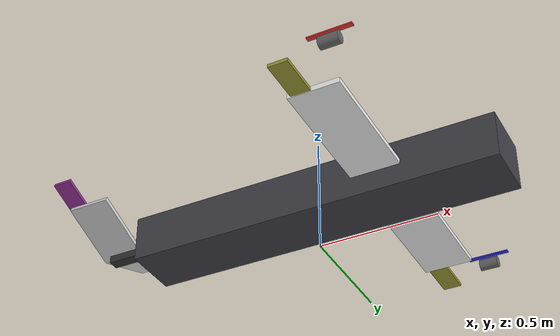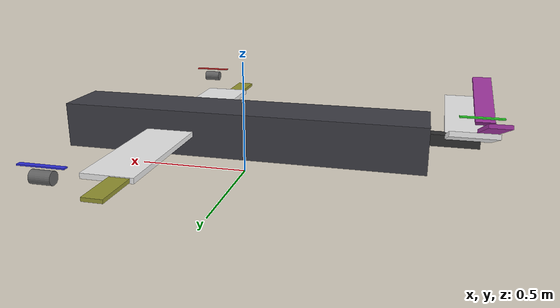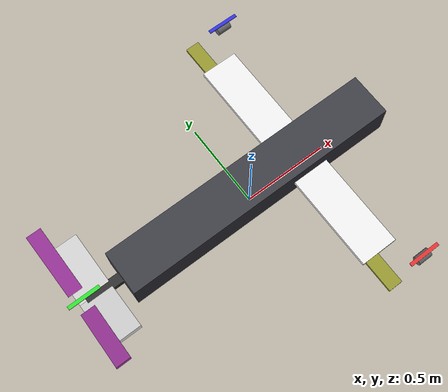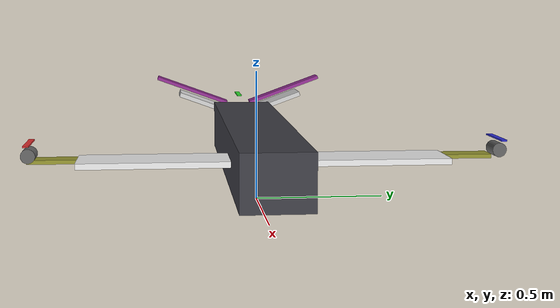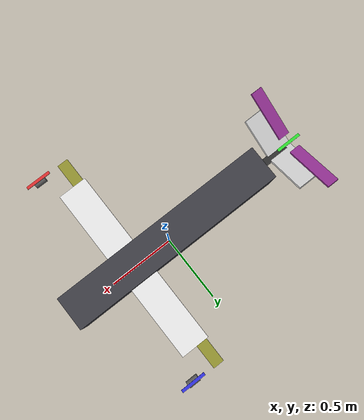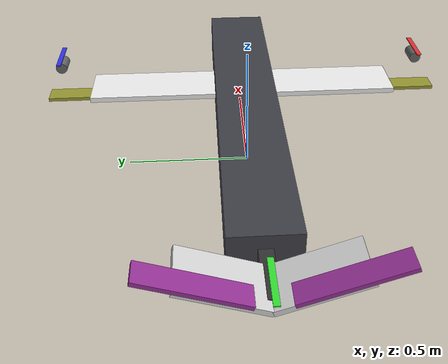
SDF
<?xml version="1.0"?>
<sdf version="1.9">
  <model name="stallion_vtol">
    <pose>0 0 0.2 0 0 0</pose>

    <link name="base_link">
      <inertial>
        <mass>2.65</mass>
        <inertia>
          <ixx>0.4705</ixx><iyy>0.2159</iyy><izz>0.6731</izz>
          <ixy>0</ixy><ixz>0</ixz><iyz>0</iyz>
        </inertia>
      </inertial>
      <collision name="fuselage_col">
        <geometry><box><size>1.6 0.25 0.20</size></box></geometry>
      </collision>
      <visual name="fuselage_vis">
        <geometry><box><size>1.6 0.25 0.20</size></box></geometry>
        <material><ambient>0.15 0.15 0.18 1</ambient><diffuse>0.25 0.25 0.28 1</diffuse></material>
      </visual>
      <!-- Wing: Stallion V2 (chord 0.211 m, span 1.34 m, area 0.265 m²) -->
      <visual name="wing_vis">
        <pose>0.30 0 0.00 0 0 0</pose>
        <geometry><box><size>0.211 1.34 0.022</size></box></geometry>
        <material><ambient>0.9 0.9 0.9 1</ambient><diffuse>0.95 0.95 0.95 1</diffuse></material>
      </visual>
      <collision name="wing_col">
        <pose>0.30 0 0 0 0 0</pose>
        <geometry><box><size>0.211 1.34 0.022</size></box></geometry>
      </collision>
      <!-- Tail boom -->
      <visual name="tailboom_vis">
        <pose>-0.60 0 0.02 0 0 0</pose>
        <geometry><box><size>0.80 0.05 0.05</size></box></geometry>
        <material><ambient>0.2 0.2 0.2 1</ambient></material>
      </visual>
      <!-- V-tail static fins (angled +/-35 deg about X) -->
      <visual name="vtail_L_static_vis">
        <pose>-0.95 0.14 0.08 0.3491 0 0</pose>
        <geometry><box><size>0.18 0.30 0.02</size></box></geometry>
        <material><ambient>0.85 0.85 0.85 1</ambient></material>
      </visual>
      <visual name="vtail_R_static_vis">
        <pose>-0.95 -0.14 0.08 -0.3491 0 0</pose>
        <geometry><box><size>0.18 0.30 0.02</size></box></geometry>
        <material><ambient>0.85 0.85 0.85 1</ambient></material>
      </visual>

      <!-- Air pressure (altimeter) -->
      <sensor name="air_pressure_sensor" type="air_pressure">
        <gz_frame_id>base_link</gz_frame_id>
        <always_on>1</always_on>
        <update_rate>50</update_rate>
        <air_pressure>
          <pressure>
            <noise type="gaussian"><mean>0</mean><stddev>3</stddev></noise>
          </pressure>
        </air_pressure>
      </sensor>
      <!-- Magnetometer -->
      <sensor name="magnetometer_sensor" type="magnetometer">
        <gz_frame_id>base_link</gz_frame_id>
        <always_on>1</always_on>
        <update_rate>100</update_rate>
        <magnetometer>
          <x><noise type="gaussian"><stddev>0.0001</stddev></noise></x>
          <y><noise type="gaussian"><stddev>0.0001</stddev></noise></y>
          <z><noise type="gaussian"><stddev>0.0001</stddev></noise></z>
        </magnetometer>
      </sensor>
      <!-- IMU -->
      <sensor name="imu_sensor" type="imu">
        <gz_frame_id>base_link</gz_frame_id>
        <always_on>1</always_on>
        <update_rate>250</update_rate>
        <imu>
          <angular_velocity>
            <x><noise type="gaussian"><mean>0.0</mean><stddev>0.0008726646</stddev></noise></x>
            <y><noise type="gaussian"><mean>0.0</mean><stddev>0.0008726646</stddev></noise></y>
            <z><noise type="gaussian"><mean>0.0</mean><stddev>0.0008726646</stddev></noise></z>
          </angular_velocity>
          <linear_acceleration>
            <x><noise type="gaussian"><mean>0.0</mean><stddev>0.00637</stddev></noise></x>
            <y><noise type="gaussian"><mean>0.0</mean><stddev>0.00637</stddev></noise></y>
            <z><noise type="gaussian"><mean>0.0</mean><stddev>0.00686</stddev></noise></z>
          </linear_acceleration>
        </imu>
      </sensor>
      <!-- GNSS -->
      <sensor name="navsat_sensor" type="navsat">
        <gz_frame_id>base_link</gz_frame_id>
        <always_on>1</always_on>
        <update_rate>30</update_rate>
      </sensor>
    </link>

    <link name="airspeed_link">
      <pose>0.40 0 0.05 0 0 0</pose>
      <inertial>
        <mass>0.001</mass>
        <inertia><ixx>1e-7</ixx><iyy>1e-7</iyy><izz>1e-7</izz>
                 <ixy>0</ixy><ixz>0</ixz><iyz>0</iyz></inertia>
      </inertial>
      <sensor name="air_speed" type="air_speed">
        <always_on>1</always_on>
        <update_rate>20</update_rate>
        <air_speed>
          <pressure>
            <noise type="gaussian"><mean>0</mean><stddev>0.01</stddev></noise>
          </pressure>
        </air_speed>
      </sensor>
    </link>
    <joint name="airspeed_joint" type="fixed">
      <parent>base_link</parent>
      <child>airspeed_link</child>
    </joint>

    <!-- ==================== Front RIGHT rotor 0 (CW, PX4 +PY → gz -Y) ==================== -->
    <link name="tilt_arm_R">
      <pose>0.44 -0.82 0.05 0 0 0</pose>
      <inertial>
        <mass>0.04</mass>
        <inertia><ixx>3e-5</ixx><iyy>3e-5</iyy><izz>3e-5</izz>
                 <ixy>0</ixy><ixz>0</ixz><iyz>0</iyz></inertia>
      </inertial>
      <visual name="tilt_arm_R_vis">
        <geometry><cylinder><radius>0.025</radius><length>0.08</length></cylinder></geometry>
        <pose>0 0 0 0 1.5708 0</pose>
        <material><ambient>0.4 0.4 0.4 1</ambient></material>
      </visual>
    </link>
    <joint name="tilt_joint_R" type="revolute">
      <parent>base_link</parent>
      <child>tilt_arm_R</child>
      <axis>
        <xyz>0 1 0</xyz>
        <limit><lower>0</lower><upper>1.5708</upper>
               <effort>10</effort><velocity>3</velocity></limit>
        <dynamics><damping>0.05</damping></dynamics>
      </axis>
    </joint>
    <link name="rotor_0">
      <pose>0.44 -0.82 0.09 0 0 0</pose>
      <inertial>
        <!-- T-Motor F90 28065 1300KV (~80g) + HQProp 7x4x3 tri-blade (~5g) -->
        <mass>0.085</mass>
        <inertia><ixx>3.5e-5</ixx><iyy>3.5e-5</iyy><izz>3.0e-5</izz>
                 <ixy>0</ixy><ixz>0</ixz><iyz>0</iyz></inertia>
      </inertial>
      <visual name="rotor_0_vis">
        <geometry><box><size>0.178 0.020 0.005</size></box></geometry>
        <material><ambient>0.9 0.2 0.2 1</ambient></material>
      </visual>
    </link>
    <joint name="rotor_0_joint" type="revolute">
      <parent>tilt_arm_R</parent>
      <child>rotor_0</child>
      <axis>
        <xyz>0 0 1</xyz>
        <limit><lower>-1e16</lower><upper>1e16</upper></limit>
        <dynamics><damping>0.002</damping></dynamics>
      </axis>
    </joint>

    <!-- ==================== Front LEFT rotor 1 (CCW, PX4 -PY → gz +Y) ==================== -->
    <link name="tilt_arm_L">
      <pose>0.44 0.82 0.05 0 0 0</pose>
      <inertial>
        <mass>0.04</mass>
        <inertia><ixx>3e-5</ixx><iyy>3e-5</iyy><izz>3e-5</izz>
                 <ixy>0</ixy><ixz>0</ixz><iyz>0</iyz></inertia>
      </inertial>
      <visual name="tilt_arm_L_vis">
        <geometry><cylinder><radius>0.025</radius><length>0.08</length></cylinder></geometry>
        <pose>0 0 0 0 1.5708 0</pose>
        <material><ambient>0.4 0.4 0.4 1</ambient></material>
      </visual>
    </link>
    <joint name="tilt_joint_L" type="revolute">
      <parent>base_link</parent>
      <child>tilt_arm_L</child>
      <axis>
        <xyz>0 1 0</xyz>
        <limit><lower>0</lower><upper>1.5708</upper>
               <effort>10</effort><velocity>3</velocity></limit>
        <dynamics><damping>0.05</damping></dynamics>
      </axis>
    </joint>
    <link name="rotor_1">
      <pose>0.44 0.82 0.09 0 0 0</pose>
      <inertial>
        <mass>0.085</mass>
        <inertia><ixx>3.5e-5</ixx><iyy>3.5e-5</iyy><izz>3.0e-5</izz>
                 <ixy>0</ixy><ixz>0</ixz><iyz>0</iyz></inertia>
      </inertial>
      <visual name="rotor_1_vis">
        <geometry><box><size>0.178 0.020 0.005</size></box></geometry>
        <material><ambient>0.2 0.2 0.9 1</ambient></material>
      </visual>
    </link>
    <joint name="rotor_1_joint" type="revolute">
      <parent>tilt_arm_L</parent>
      <child>rotor_1</child>
      <axis>
        <xyz>0 0 1</xyz>
        <limit><lower>-1e16</lower><upper>1e16</upper></limit>
        <dynamics><damping>0.002</damping></dynamics>
      </axis>
    </joint>

    <!-- ==================== Tail rotor 2 (CCW, fixed vertical) ==================== -->
    <link name="rotor_2">
      <pose>-1.00 0 0.12 0 0 0</pose>
      <inertial>
        <mass>0.085</mass>
        <inertia><ixx>3.5e-5</ixx><iyy>3.5e-5</iyy><izz>3.0e-5</izz>
                 <ixy>0</ixy><ixz>0</ixz><iyz>0</iyz></inertia>
      </inertial>
      <visual name="rotor_2_vis">
        <geometry><box><size>0.178 0.020 0.005</size></box></geometry>
        <material><ambient>0.2 0.9 0.2 1</ambient></material>
      </visual>
    </link>
    <joint name="rotor_2_joint" type="revolute">
      <parent>base_link</parent>
      <child>rotor_2</child>
      <axis>
        <xyz>0 0 1</xyz>
        <limit><lower>-1e16</lower><upper>1e16</upper></limit>
        <dynamics><damping>0.002</damping></dynamics>
      </axis>
    </joint>

    <!-- ==================== Aileron L (left wing, SDF +Y) ==================== -->
    <link name="aileron_L">
      <pose>0.25 0.65 0.00 0 0 0</pose>
      <inertial>
        <mass>0.025</mass>
        <inertia><ixx>5e-5</ixx><iyy>5e-5</iyy><izz>5e-5</izz>
                 <ixy>0</ixy><ixz>0</ixz><iyz>0</iyz></inertia>
      </inertial>
      <visual name="aileron_L_vis">
        <geometry><box><size>0.08 0.40 0.015</size></box></geometry>
        <material><ambient>0.6 0.6 0.2 1</ambient></material>
      </visual>
    </link>
    <joint name="aileron_L_joint" type="revolute">
      <parent>base_link</parent>
      <child>aileron_L</child>
      <axis>
        <xyz>0 1 0</xyz>
        <limit><lower>-0.5236</lower><upper>0.5236</upper>
               <effort>5</effort><velocity>5</velocity></limit>
        <dynamics><damping>0.02</damping></dynamics>
      </axis>
    </joint>

    <!-- ==================== Aileron R (right wing, SDF -Y) ==================== -->
    <link name="aileron_R">
      <pose>0.25 -0.65 0.00 0 0 0</pose>
      <inertial>
        <mass>0.025</mass>
        <inertia><ixx>5e-5</ixx><iyy>5e-5</iyy><izz>5e-5</izz>
                 <ixy>0</ixy><ixz>0</ixz><iyz>0</iyz></inertia>
      </inertial>
      <visual name="aileron_R_vis">
        <geometry><box><size>0.08 0.40 0.015</size></box></geometry>
        <material><ambient>0.6 0.6 0.2 1</ambient></material>
      </visual>
    </link>
    <joint name="aileron_R_joint" type="revolute">
      <parent>base_link</parent>
      <child>aileron_R</child>
      <axis>
        <xyz>0 1 0</xyz>
        <limit><lower>-0.5236</lower><upper>0.5236</upper>
               <effort>5</effort><velocity>5</velocity></limit>
        <dynamics><damping>0.02</damping></dynamics>
      </axis>
    </joint>

    <!-- ==================== V-tail L ruddervator (left, SDF +Y, roll +35°) ==================== -->
    <link name="vtail_L">
      <pose>-1.02 0.22 0.14 0.3491 0 0</pose>
      <inertial>
        <mass>0.03</mass>
        <inertia><ixx>5e-5</ixx><iyy>5e-5</iyy><izz>5e-5</izz>
                 <ixy>0</ixy><ixz>0</ixz><iyz>0</iyz></inertia>
      </inertial>
      <visual name="vtail_L_vis">
        <geometry><box><size>0.08 0.35 0.015</size></box></geometry>
        <material><ambient>0.6 0.2 0.6 1</ambient></material>
      </visual>
    </link>
    <joint name="vtail_L_joint" type="revolute">
      <parent>base_link</parent>
      <child>vtail_L</child>
      <axis>
        <xyz>0 1 0</xyz>
        <limit><lower>-0.5236</lower><upper>0.5236</upper>
               <effort>5</effort><velocity>5</velocity></limit>
        <dynamics><damping>0.02</damping></dynamics>
      </axis>
    </joint>

    <!-- ==================== V-tail R ruddervator (right, SDF -Y, roll -35°) ==================== -->
    <link name="vtail_R">
      <pose>-1.02 -0.22 0.14 -0.3491 0 0</pose>
      <inertial>
        <mass>0.03</mass>
        <inertia><ixx>5e-5</ixx><iyy>5e-5</iyy><izz>5e-5</izz>
                 <ixy>0</ixy><ixz>0</ixz><iyz>0</iyz></inertia>
      </inertial>
      <visual name="vtail_R_vis">
        <geometry><box><size>0.08 0.35 0.015</size></box></geometry>
        <material><ambient>0.6 0.2 0.6 1</ambient></material>
      </visual>
    </link>
    <joint name="vtail_R_joint" type="revolute">
      <parent>base_link</parent>
      <child>vtail_R</child>
      <axis>
        <xyz>0 1 0</xyz>
        <limit><lower>-0.5236</lower><upper>0.5236</upper>
               <effort>5</effort><velocity>5</velocity></limit>
        <dynamics><damping>0.02</damping></dynamics>
      </axis>
    </joint>

    <plugin filename="gz-sim-multicopter-motor-model-system"
            name="gz::sim::systems::MulticopterMotorModel">
      <jointName>rotor_0_joint</jointName>
      <linkName>rotor_0</linkName>
      <turningDirection>cw</turningDirection>
      <timeConstantUp>0.0125</timeConstantUp>
      <timeConstantDown>0.025</timeConstantDown>
      <maxRotVelocity>2500</maxRotVelocity>
      <motorConstant>3.80e-06</motorConstant>
      <momentConstant>0.016</momentConstant>
      <commandSubTopic>command/motor_speed</commandSubTopic>
      <motorNumber>0</motorNumber>
      <rotorDragCoefficient>8.06428e-05</rotorDragCoefficient>
      <rollingMomentCoefficient>1e-06</rollingMomentCoefficient>
      <rotorVelocitySlowdownSim>10</rotorVelocitySlowdownSim>
      <motorType>velocity</motorType>
    </plugin>
    <plugin filename="gz-sim-multicopter-motor-model-system"
            name="gz::sim::systems::MulticopterMotorModel">
      <jointName>rotor_1_joint</jointName>
      <linkName>rotor_1</linkName>
      <turningDirection>ccw</turningDirection>
      <timeConstantUp>0.0125</timeConstantUp>
      <timeConstantDown>0.025</timeConstantDown>
      <maxRotVelocity>2500</maxRotVelocity>
      <motorConstant>3.80e-06</motorConstant>
      <momentConstant>0.016</momentConstant>
      <commandSubTopic>command/motor_speed</commandSubTopic>
      <motorNumber>1</motorNumber>
      <rotorDragCoefficient>8.06428e-05</rotorDragCoefficient>
      <rollingMomentCoefficient>1e-06</rollingMomentCoefficient>
      <rotorVelocitySlowdownSim>10</rotorVelocitySlowdownSim>
      <motorType>velocity</motorType>
    </plugin>
    <plugin filename="gz-sim-multicopter-motor-model-system"
            name="gz::sim::systems::MulticopterMotorModel">
      <jointName>rotor_2_joint</jointName>
      <linkName>rotor_2</linkName>
      <turningDirection>ccw</turningDirection>
      <timeConstantUp>0.0125</timeConstantUp>
      <timeConstantDown>0.025</timeConstantDown>
      <maxRotVelocity>2500</maxRotVelocity>
      <motorConstant>3.80e-06</motorConstant>
      <momentConstant>0.016</momentConstant>
      <commandSubTopic>command/motor_speed</commandSubTopic>
      <motorNumber>2</motorNumber>
      <rotorDragCoefficient>8.06428e-05</rotorDragCoefficient>
      <rollingMomentCoefficient>1e-06</rollingMomentCoefficient>
      <rotorVelocitySlowdownSim>10</rotorVelocitySlowdownSim>
      <motorType>velocity</motorType>
    </plugin>

    <plugin filename="gz-sim-joint-position-controller-system"
            name="gz::sim::systems::JointPositionController">
      <joint_name>aileron_L_joint</joint_name>
      <sub_topic>servo_0</sub_topic>
      <p_gain>3</p_gain><i_gain>0</i_gain><d_gain>0.05</d_gain>
    </plugin>
    <plugin filename="gz-sim-joint-position-controller-system"
            name="gz::sim::systems::JointPositionController">
      <joint_name>aileron_R_joint</joint_name>
      <sub_topic>servo_1</sub_topic>
      <p_gain>3</p_gain><i_gain>0</i_gain><d_gain>0.05</d_gain>
    </plugin>
    <plugin filename="gz-sim-joint-position-controller-system"
            name="gz::sim::systems::JointPositionController">
      <joint_name>vtail_L_joint</joint_name>
      <sub_topic>servo_2</sub_topic>
      <p_gain>3</p_gain><i_gain>0</i_gain><d_gain>0.05</d_gain>
    </plugin>
    <plugin filename="gz-sim-joint-position-controller-system"
            name="gz::sim::systems::JointPositionController">
      <joint_name>vtail_R_joint</joint_name>
      <sub_topic>servo_3</sub_topic>
      <p_gain>3</p_gain><i_gain>0</i_gain><d_gain>0.05</d_gain>
    </plugin>
    <plugin filename="gz-sim-joint-position-controller-system"
            name="gz::sim::systems::JointPositionController">
      <joint_name>tilt_joint_R</joint_name>
      <sub_topic>servo_4</sub_topic>
      <p_gain>5</p_gain><i_gain>0</i_gain><d_gain>0.1</d_gain>
    </plugin>
    <plugin filename="gz-sim-joint-position-controller-system"
            name="gz::sim::systems::JointPositionController">
      <joint_name>tilt_joint_L</joint_name>
      <sub_topic>servo_5</sub_topic>
      <p_gain>5</p_gain><i_gain>0</i_gain><d_gain>0.1</d_gain>
    </plugin>

    <plugin filename="gz-sim-lift-drag-system"
            name="gz::sim::systems::LiftDrag">
      <air_density>1.2041</air_density>
      <cla>4.86</cla>
      <cda>0.6417112299</cda>
      <cma>0</cma>
      <alpha_stall>0.192</alpha_stall>
      <cla_stall>-3.85</cla_stall>
      <cda_stall>-0.9233984055</cda_stall>
      <cma_stall>0</cma_stall>
      <cp>-0.05 0 0</cp>
      <area>0.265</area>
      <a0>-0.056</a0>
      <upward>0 0 1</upward>
      <forward>1 0 0</forward>
      <link_name>base_link</link_name>
    </plugin>

    <!-- ==================== Odometry / pose publishers ==================== -->
    <plugin filename="gz-sim-odometry-publisher-system"
            name="gz::sim::systems::OdometryPublisher">
      <odom_frame>world</odom_frame>
      <robot_base_frame>stallion_vtol</robot_base_frame>
      <odom_publish_frequency>250</odom_publish_frequency>
      <dimensions>3</dimensions>
      <odom_topic>odometry</odom_topic>
    </plugin>
    <plugin filename="gz-sim-pose-publisher-system"
            name="gz::sim::systems::PosePublisher">
      <publish_link_pose>true</publish_link_pose>
      <publish_sensor_pose>false</publish_sensor_pose>
      <publish_model_pose>true</publish_model_pose>
      <publish_nested_model_pose>false</publish_nested_model_pose>
      <use_pose_vector_msg>true</use_pose_vector_msg>
      <static_publisher>false</static_publisher>
      <update_frequency>250</update_frequency>
    </plugin>

  </model>
</sdf>
